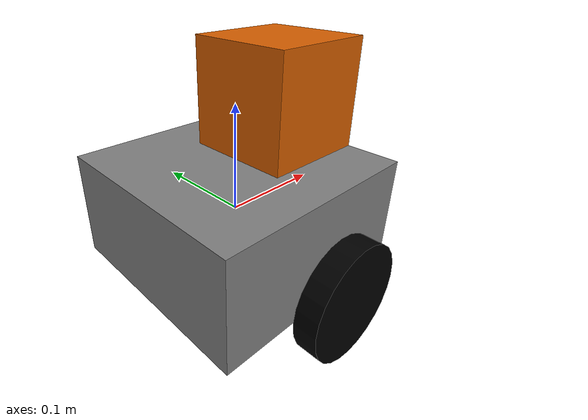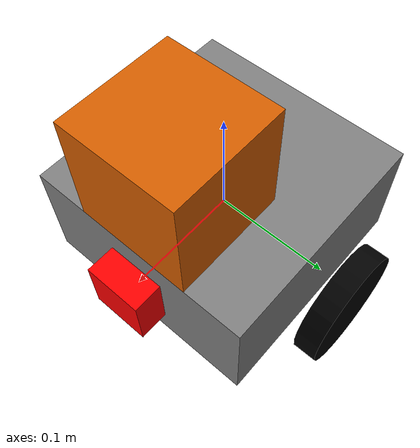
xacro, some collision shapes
<?xml version='1.0'?>

<robot name="my_robot" xmlns:xacro="http://www.ros.org/wiki/xacro">

  <material name="blue">
    <color rgba="0 0 0.8 1"/>
  </material>
  <material name="green">
    <color rgba="0 0.5 0 1"/>
  </material>
  <material name="red">
    <color rgba="1 0 0 1"/>
  </material>
  <material name="gray">
    <color rgba="0.5 0.5 0.5 1"/>
  </material>
  <material name="black">
    <color rgba="0 0 0 1"/>
  </material>

  <xacro:include filename="$(find my_robot)/urdf/my_robot.gazebo" />

  <link name="robot_footprint"></link>

  <joint name="robot_footprint_joint" type="fixed">
    <origin xyz="0 0 0" rpy="0 0 0" />
    <parent link="robot_footprint"/>
    <child link="chassis" />
  </joint>

  <link name='chassis'>
    <pose>0 0 0.05 0 0 0</pose>

    <inertial>
      <mass value="15.0"/>
      <origin xyz="0.0 0 0" rpy=" 0 0 0"/>
      <inertia
          ixx="0.1" ixy="0" ixz="0"
          iyy="0.1" iyz="0"
          izz="0.1"
      />
    </inertial>

    <collision name='collision'>
      <origin xyz="0 0 0" rpy=" 0 0 0"/>
      <geometry>
        <box size=".2 .2 .1"/>
      </geometry>
    </collision>

    <visual name='chassis_visual'>
      <origin xyz="0 0 0" rpy=" 0 0 0"/>
      <geometry>
        <box size=".2 .2 .1"/>
      </geometry>
      <material name="gray"/>
    </visual>

    <collision name='back_caster_collision'>
      <origin xyz="-0.05 0 -0.05" rpy=" 0 0 0"/>
      <geometry>
        <sphere radius="0.02499"/>
      </geometry>
    </collision>

    <visual name='back_caster_visual'>
      <origin xyz="-0.05 0 -0.05" rpy=" 0 0 0"/>
      <geometry>
        <sphere radius="0.025"/>
      </geometry>
    </visual>

    <collision name='front_caster_collision'>
      <origin xyz="0.05 0 -0.05" rpy=" 0 0 0"/>
      <geometry>
        <sphere radius="0.02499"/>
      </geometry>
    </collision>

    <visual name='front_caster_visual'>
      <origin xyz="0.05 0 -0.05" rpy=" 0 0 0"/>
      <geometry>
        <sphere radius="0.025"/>
      </geometry>
    </visual>
  </link>

  <link name='left_wheel'>
    <inertial>
      <mass value="5.0"/>
      <origin xyz="0.0 0 -0.05" rpy=" 0 0 0"/>
      <inertia
          ixx="0.1" ixy="0" ixz="0"
          iyy="0.1" iyz="0"
          izz="0.1"
      />
    </inertial>

    <collision name='left_wheel_collision'>
      <origin xyz="0 0 0" rpy=" 0 1.5707 1.5707"/>
      <geometry>
        <cylinder radius="0.05" length="0.02"/>
      </geometry>
    </collision>

    <visual name='left_wheel_visual'>
      <origin xyz="0 0 0" rpy=" 0 1.5707 1.5707"/>
      <geometry>
        <cylinder radius="0.05" length="0.02"/>
      </geometry>
      <material name="black"/>
    </visual>
  </link>

  <link name='right_wheel'>
    <inertial>
      <mass value="5.0"/>
      <origin xyz="0.0 0 -0.05" rpy=" 0 0 0"/>
      <inertia
          ixx="0.1" ixy="0" ixz="0"
          iyy="0.1" iyz="0"
          izz="0.1"
      />
    </inertial>

    <collision name='right_wheel_collision'>
      <origin xyz="0 0 0" rpy=" 0 1.5707 1.5707"/>
      <geometry>
        <cylinder radius="0.05" length="0.02"/>
      </geometry>
    </collision>

    <visual name='right_wheel_visual'>
      <origin xyz="0 0 0" rpy=" 0 1.5707 1.5707"/>
      <geometry>
        <cylinder radius="0.05" length="0.02"/>
      </geometry>
      <material name="black"/>
    </visual>
  </link>

  <joint type="continuous" name="left_wheel_hinge">
    <origin xyz="0 0.125 -0.025" rpy="0 0 0"/>
    <child link="left_wheel"/>
    <parent link="chassis"/>
    <axis xyz="0 1 0" rpy="0 0 0"/>
    <limit effort="10000" velocity="1000"/>
    <dynamics damping="1.0" friction="1.0"/>
  </joint>

  <joint type="continuous" name="right_wheel_hinge">
    <origin xyz="0 -0.125 -0.025" rpy="0 0 0"/>
    <child link="right_wheel"/>
    <parent link="chassis"/>
    <axis xyz="0 1 0" rpy="0 0 0"/>
    <limit effort="10000" velocity="1000"/>
    <dynamics damping="1.0" friction="1.0"/>
  </joint>

  <link name="camera">
    <pose>0 0 0 0 0 0 </pose>
    <inertial>
      <mass value="0.1"/>
      <origin xyz="0.05 0.05 0.05" rpy=" 0 0 0"/>
      <inertia
          ixx="1e-6" ixy="0" ixz="0"
          iyy="1e-6" iyz="0"
          izz="1e-6"
      />
    </inertial>
    <collision name='camera_collision'>
      <origin xyz="0 0 0" rpy=" 0 0 0"/>
      <geometry>
        <box size="0.05 0.05 0.05"/>
      </geometry>
    </collision>

    <visual name='camera_visual'>
      <origin xyz="0 0 0" rpy=" 0 0 0"/>
      <geometry>
        <box size="0.05 0.05 0.05"/>
      </geometry>
      <material name="red"/>
    </visual>
  </link>

  <joint type="fixed" name="camera_joint">
    <origin xyz="0.1 0 0" rpy="0 0 0"/>
    <child link="camera"/>
    <parent link="chassis"/>
    <axis xyz="0 1 0" rpy="0 0 0"/>
  </joint>

  <link name="hokuyo">
    <inertial>
      <mass value="1e-5"/>
      <origin xyz="0 0 0" rpy=" 0 0 0"/>
      <inertia
          ixx="1e-6" ixy="0" ixz="0"
          iyy="1e-6" iyz="0"
          izz="1e-6"
      />
    </inertial>
    <collision name='hokuyo_collision'>
      <origin xyz='0 0 0' rpy='0 0 0'/>
      <geometry>
        <box size='0.1 0.1 0.1'/>
      </geometry>
    </collision>

    <visual name='hokuyo_visual'>
      <origin xyz='0 0 0' rpy='0 0 0'/>
      <geometry>
        <mesh filename = "package://my_robot/meshes/hokuyo.dae" />
      </geometry>
    </visual>
  </link>

  <joint type="fixed" name="hokuyo_joint">
    <origin xyz="0.05 0 0.1" rpy="0 0 0" />
    <axis xyz="0 1 0" rpy="0 0 0" />
    <parent link="chassis"/>
    <child link="hokuyo"/>
  </joint>

</robot>
